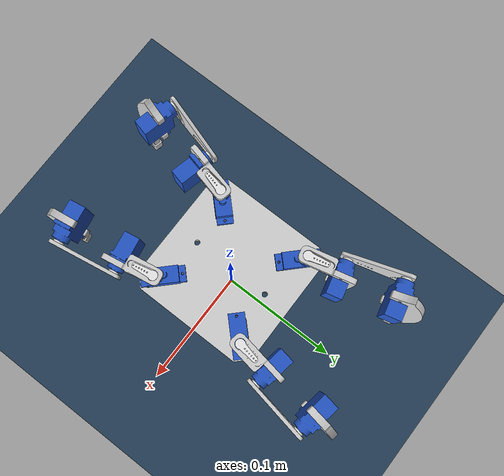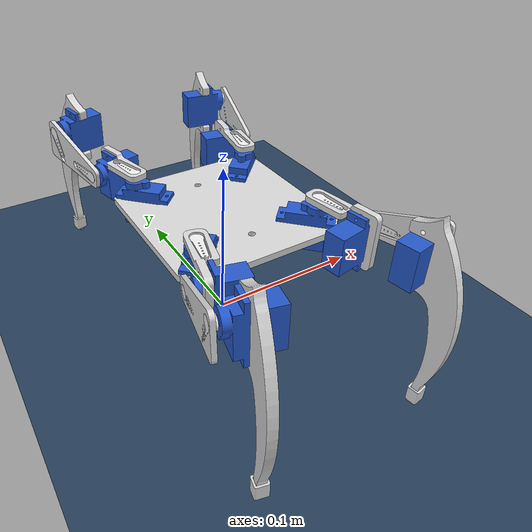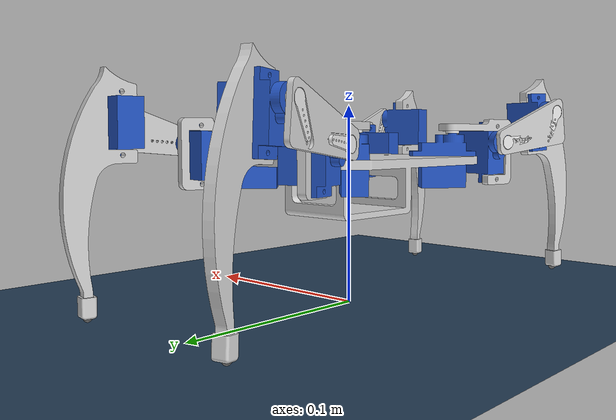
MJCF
<mujoco model="spider_quadruped_scene">
  <include file="base.xml"/>

  <statistic center="0 0 0.05" extent="0.35"/>

  <visual>
    <headlight diffuse="0.6 0.6 0.6" ambient="0.3 0.3 0.3" specular="0 0 0"/>
    <global azimuth="140" elevation="-25"/>
  </visual>

  <asset>
    <texture type="skybox" builtin="gradient" rgb1="0.3 0.5 0.7" rgb2="0 0 0" width="512" height="3072"/>
    <texture type="2d" name="groundplane" builtin="checker" mark="edge" rgb1="0.2 0.3 0.4" rgb2="0.1 0.2 0.3"
      markrgb="0.8 0.8 0.8" width="300" height="300"/>
    <material name="groundplane" texture="groundplane" texuniform="true" texrepeat="5 5" reflectance="0.2"/>
  </asset>

  <worldbody>
    <light pos="0 0 1.5" dir="0 0 -1" directional="true"/>
    <geom name="floor" size="0 0 0.05" type="plane" material="groundplane" solref="0.004 1"/>
  </worldbody>
</mujoco>

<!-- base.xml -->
<mujoco model="spider_quadruped">
  <compiler angle="radian" meshdir="../meshes/" autolimits="true"/>
  <option timestep="0.001" integrator="implicitfast"/>

  <default>
    <mesh scale="0.001 0.001 0.001"/>
    <joint damping="0.02" armature="0.0005" frictionloss="0.001" range="-1.5708 1.5708"/>
    <position kp="3" kv="0.03" forcerange="-0.2 0.2" inheritrange="1"/>
    <default class="visual">
      <geom type="mesh" contype="0" conaffinity="0" group="2" density="0" quat="0.5 0.5 0.5 0.5" material="print"/>
      <default class="servo"><geom material="servo"/></default>
      <default class="horn"><geom material="horn"/></default>
    </default>
    <default class="collision">
      <!-- collide with the floor only (self-collision is prevented by joint limits) -->
      <geom type="mesh" group="3" density="0" quat="0.5 0.5 0.5 0.5" friction="0.8 0.02 0.01" rgba="1 0.3 0.3 0.4"
        contype="0" conaffinity="1" solref="0.004 1"/>
    </default>
  </default>

  <asset>
    <material name="print" rgba="0.85 0.85 0.85 1"/>
    <material name="servo" rgba="0.15 0.35 0.8 1"/>
    <material name="horn" rgba="0.95 0.95 0.95 1"/>

    <mesh name="base" file="quadrapod reddit - base 5.0 remake-1.STL"/>
    <mesh name="servo_1" file="quadrapod reddit - Servo_motor.step-1.STL"/>
    <mesh name="servo_2" file="quadrapod reddit - Servo_motor.step-2.STL"/>
    <mesh name="servo_3" file="quadrapod reddit - Servo_motor.step-3.STL"/>
    <mesh name="servo_4" file="quadrapod reddit - Servo_motor.step-4.STL"/>
    <mesh name="servo_5" file="quadrapod reddit - Servo_motor.step-5.STL"/>
    <mesh name="servo_6" file="quadrapod reddit - Servo_motor.step-6.STL"/>
    <mesh name="servo_7" file="quadrapod reddit - Servo_motor.step-7.STL"/>
    <mesh name="servo_8" file="quadrapod reddit - Servo_motor.step-8.STL"/>
    <mesh name="servo_9" file="quadrapod reddit - Servo_motor.step-9.STL"/>
    <mesh name="servo_10" file="quadrapod reddit - Servo_motor.step-10.STL"/>
    <mesh name="servo_11" file="quadrapod reddit - Servo_motor.step-11.STL"/>
    <mesh name="servo_12" file="quadrapod reddit - Servo_motor.step-12.STL"/>
    <mesh name="horn_1" file="quadrapod reddit - servo horn-1.STL"/>
    <mesh name="horn_2" file="quadrapod reddit - servo horn-2.STL"/>
    <mesh name="horn_3" file="quadrapod reddit - servo horn-3.STL"/>
    <mesh name="horn_4" file="quadrapod reddit - servo horn-4.STL"/>
    <mesh name="horn_5" file="quadrapod reddit - servo horn-5.STL"/>
    <mesh name="horn_6" file="quadrapod reddit - servo horn-6.STL"/>
    <mesh name="horn_7" file="quadrapod reddit - servo horn-7.STL"/>
    <mesh name="horn_8" file="quadrapod reddit - servo horn-8.STL"/>
    <mesh name="horn_9" file="quadrapod reddit - servo horn-9.STL"/>
    <mesh name="horn_10" file="quadrapod reddit - servo horn-10.STL"/>
    <mesh name="horn_11" file="quadrapod reddit - servo horn-11.STL"/>
    <mesh name="horn_12" file="quadrapod reddit - servo horn-12.STL"/>
    <mesh name="FL_clamp" file="quadrapod reddit - clamp 1 redesigned-1.STL"/>
    <mesh name="FR_clamp" file="quadrapod reddit - clamp 1 redesigned-2.STL"/>
    <mesh name="RL_clamp" file="quadrapod reddit - Mirrorclamp 1 redesigned-1.STL"/>
    <mesh name="RR_clamp" file="quadrapod reddit - Mirrorclamp 1 redesigned-2.STL"/>
    <mesh name="FL_mid" file="quadrapod reddit - mid clamp redesign-1.STL"/>
    <mesh name="FR_mid" file="quadrapod reddit - mid clamp redesign-2.STL"/>
    <mesh name="RL_mid" file="quadrapod reddit - Mirrormid clamp redesign---------------------1.STL"/>
    <mesh name="RR_mid" file="quadrapod reddit - Mirrormid clamp redesign---------------------2.STL"/>
    <mesh name="FL_tibia" file="quadrapod reddit - tibia RD-1.STL"/>
    <mesh name="RL_tibia" file="quadrapod reddit - tibia RD-2.STL"/>
    <mesh name="RR_tibia" file="quadrapod reddit - tibia RD-3.STL"/>
    <mesh name="FR_tibia" file="quadrapod reddit - tibia RD-4.STL"/>
    <mesh name="FL_tip" file="quadrapod reddit - tibia tip-1.STL"/>
    <mesh name="RL_tip" file="quadrapod reddit - tibia tip-2.STL"/>
    <mesh name="RR_tip" file="quadrapod reddit - tibia tip-3.STL"/>
    <mesh name="FR_tip" file="quadrapod reddit - tibia tip-4.STL"/>
  </asset>

  <worldbody>
    <body name="base_link" pos="0 0 0.06" childclass="visual">
      <freejoint name="root"/>
      <inertial pos="0 0 0.0086" mass="0.2025" fullinertia="7.194e-05 7.012e-05 1.310e-04 0 0 0"/>
      <site name="imu" pos="0 0 0" size="0.003"/>
      <geom mesh="base" pos="-0.0675254 -0.132465 -0.054649"/>
      <geom mesh="servo_1" class="servo" pos="-0.0675254 -0.132465 -0.054649"/>
      <geom mesh="servo_4" class="servo" pos="-0.0675254 -0.132465 -0.054649"/>
      <geom mesh="servo_5" class="servo" pos="-0.0675254 -0.132465 -0.054649"/>
      <geom mesh="servo_6" class="servo" pos="-0.0675254 -0.132465 -0.054649"/>
      <geom mesh="base" class="collision" pos="-0.0675254 -0.132465 -0.054649"/>
      <geom mesh="servo_1" class="collision" pos="-0.0675254 -0.132465 -0.054649"/>
      <geom mesh="servo_4" class="collision" pos="-0.0675254 -0.132465 -0.054649"/>
      <geom mesh="servo_5" class="collision" pos="-0.0675254 -0.132465 -0.054649"/>
      <geom mesh="servo_6" class="collision" pos="-0.0675254 -0.132465 -0.054649"/>

      <!-- FRONT LEFT -->
      <body name="FL_coxa" pos="0.03752 0.037166 0.02855">
        <joint name="FL_coxa_joint" axis="0 0 1" range="-1.5708 0.5236"/>
        <inertial pos="-0.00046952 0.025303 -0.011077" mass="0.010901" fullinertia="1.3433e-06 1.1827e-06 1.1172e-06 7.7895e-08 -6.036e-08 2.6762e-07"/>
        <geom mesh="FL_clamp" pos="-0.105045 -0.169631 -0.083199"/>
        <geom mesh="horn_1" class="horn" pos="-0.105045 -0.169631 -0.083199"/>
        <geom mesh="servo_2" class="servo" pos="-0.105045 -0.169631 -0.083199"/>
        <geom mesh="FL_clamp" class="collision" pos="-0.105045 -0.169631 -0.083199"/>
        <geom mesh="servo_2" class="collision" pos="-0.105045 -0.169631 -0.083199"/>
        <body name="FL_femur" pos="0.016051 0.024277 -0.0074">
          <joint name="FL_femur_joint" axis="0.9862 -0.1656 0"/>
          <inertial pos="0.0037466 0.020988 0.0058263" mass="0.0024496" fullinertia="6.2957e-07 1.2071e-07 5.4206e-07 -8.8356e-08 -2.2326e-08 -1.359e-07"/>
          <geom mesh="FL_mid" pos="-0.121096 -0.193908 -0.075799"/>
          <geom mesh="horn_2" class="horn" pos="-0.121096 -0.193908 -0.075799"/>
          <geom mesh="horn_3" class="horn" pos="-0.121096 -0.193908 -0.075799"/>
          <geom mesh="FL_mid" class="collision" pos="-0.121096 -0.193908 -0.075799"/>
          <body name="FL_tibia" pos="0.0063376 0.037747 0.014863">
            <joint name="FL_tibia_joint" axis="0.9862 -0.1656 0" range="-0.9948 1.5708"/>
            <inertial pos="-0.015733 0.0077231 -0.013664" mass="0.014061" fullinertia="7.1221e-06 6.6603e-06 1.4786e-06 -1.1556e-07 2.9199e-07 1.6351e-06"/>
            <geom mesh="FL_tibia" pos="-0.127433 -0.231655 -0.0906616"/>
            <geom mesh="FL_tip" pos="-0.127433 -0.231655 -0.0906616"/>
            <geom mesh="servo_3" class="servo" pos="-0.127433 -0.231655 -0.0906616"/>
            <geom mesh="FL_tibia" class="collision" pos="-0.127433 -0.231655 -0.0906616"/>
            <geom mesh="servo_3" class="collision" pos="-0.127433 -0.231655 -0.0906616"/>
            <geom name="FL_foot" mesh="FL_tip" class="collision" pos="-0.127433 -0.231655 -0.0906616"/>
            <site name="FL_foot" pos="-0.01356 0.018587 -0.089869" size="0.002"/>
          </body>
        </body>
      </body>

      <!-- REAR LEFT -->
      <body name="RL_coxa" pos="-0.037166 0.03752 0.02855">
        <joint name="RL_coxa_joint" axis="0 0 1" range="-0.5760 1.5708"/>
        <inertial pos="-0.0013273 0.025273 -0.010665" mass="0.010901" fullinertia="1.3421e-06 1.161e-06 1.1172e-06 -6.574e-08 4.0386e-08 2.6305e-07"/>
        <geom mesh="RL_clamp" pos="-0.0303594 -0.169984 -0.083199"/>
        <geom mesh="horn_4" class="horn" pos="-0.0303594 -0.169984 -0.083199"/>
        <geom mesh="servo_7" class="servo" pos="-0.0303594 -0.169984 -0.083199"/>
        <geom mesh="RL_clamp" class="collision" pos="-0.0303594 -0.169984 -0.083199"/>
        <geom mesh="servo_7" class="collision" pos="-0.0303594 -0.169984 -0.083199"/>
        <body name="RL_femur" pos="-0.017733 0.023077 -0.0069">
          <joint name="RL_femur_joint" axis="-0.972 -0.2352 0"/>
          <inertial pos="-0.005173 0.020448 0.0066131" mass="0.0024496" fullinertia="6.1528e-07 1.4603e-07 5.3144e-07 1.2108e-07 3.5638e-08 -1.4931e-07"/>
          <geom mesh="RL_mid" pos="-0.0126263 -0.193062 -0.076299"/>
          <geom mesh="horn_5" class="horn" pos="-0.0126263 -0.193062 -0.076299"/>
          <geom mesh="horn_6" class="horn" pos="-0.0126263 -0.193062 -0.076299"/>
          <geom mesh="RL_mid" class="collision" pos="-0.0126263 -0.193062 -0.076299"/>
          <body name="RL_tibia" pos="-0.0088641 0.036639 0.016275">
            <joint name="RL_tibia_joint" axis="-0.972 -0.2352 0" range="-1.5708 0.9948"/>
            <inertial pos="0.014988 0.0094516 -0.013408" mass="0.014061" fullinertia="7.0932e-06 6.518e-06 1.65e-06 1.8779e-07 -4.667e-07 1.8427e-06"/>
            <geom mesh="RL_tibia" pos="-0.00376213 -0.229701 -0.0925738"/>
            <geom mesh="RL_tip" pos="-0.00376213 -0.229701 -0.0925738"/>
            <geom mesh="servo_8" class="servo" pos="-0.00376213 -0.229701 -0.0925738"/>
            <geom mesh="RL_tibia" class="collision" pos="-0.00376213 -0.229701 -0.0925738"/>
            <geom mesh="servo_8" class="collision" pos="-0.00376213 -0.229701 -0.0925738"/>
            <geom name="RL_foot" mesh="RL_tip" class="collision" pos="-0.00376213 -0.229701 -0.0925738"/>
            <site name="RL_foot" pos="0.011155 0.022571 -0.089045" size="0.002"/>
          </body>
        </body>
      </body>

      <!-- REAR RIGHT -->
      <body name="RR_coxa" pos="-0.03752 -0.037166 0.02855">
        <joint name="RR_coxa_joint" axis="0 0 1" range="-1.5708 0.5760"/>
        <inertial pos="-0.0015781 -0.02548 -0.010665" mass="0.010901" fullinertia="1.3287e-06 1.2335e-06 1.1761e-06 4.6707e-08 3.4993e-08 -2.6174e-07"/>
        <geom mesh="RR_clamp" pos="-0.0300058 -0.0952989 -0.083199"/>
        <geom mesh="horn_7" class="horn" pos="-0.0300058 -0.0952989 -0.083199"/>
        <geom mesh="servo_9" class="servo" pos="-0.0300058 -0.0952989 -0.083199"/>
        <geom mesh="RR_clamp" class="collision" pos="-0.0300058 -0.0952989 -0.083199"/>
        <geom mesh="servo_9" class="collision" pos="-0.0300058 -0.0952989 -0.083199"/>
        <body name="RR_femur" pos="-0.01738 -0.023431 -0.0069">
          <joint name="RR_femur_joint" axis="-0.972 0.2352 0"/>
          <inertial pos="-0.0052527 -0.020428 0.0066131" mass="0.0024496" fullinertia="6.1521e-07 1.461e-07 5.3144e-07 -1.2122e-07 3.5146e-08 1.4943e-07"/>
          <geom mesh="RR_mid" pos="-0.0126263 -0.0718681 -0.076299"/>
          <geom mesh="horn_8" class="horn" pos="-0.0126263 -0.0718681 -0.076299"/>
          <geom mesh="horn_9" class="horn" pos="-0.0126263 -0.0718681 -0.076299"/>
          <geom mesh="RR_mid" class="collision" pos="-0.0126263 -0.0718681 -0.076299"/>
          <body name="RR_tibia" pos="-0.0088641 -0.036639 0.016275">
            <joint name="RR_tibia_joint" axis="-0.972 0.2352 0" range="-1.0996 1.5708"/>
            <inertial pos="0.014988 -0.0094516 -0.013408" mass="0.014061" fullinertia="7.0932e-06 6.518e-06 1.65e-06 -1.8779e-07 -4.667e-07 -1.8427e-06"/>
            <geom mesh="RR_tibia" pos="-0.00376213 -0.0352287 -0.0925738"/>
            <geom mesh="RR_tip" pos="-0.00376213 -0.0352287 -0.0925738"/>
            <geom mesh="servo_10" class="servo" pos="-0.00376213 -0.0352287 -0.0925738"/>
            <geom mesh="RR_tibia" class="collision" pos="-0.00376213 -0.0352287 -0.0925738"/>
            <geom mesh="servo_10" class="collision" pos="-0.00376213 -0.0352287 -0.0925738"/>
            <geom name="RR_foot" mesh="RR_tip" class="collision" pos="-0.00376213 -0.0352287 -0.0925738"/>
            <site name="RR_foot" pos="0.011155 -0.022571 -0.089045" size="0.002"/>
          </body>
        </body>
      </body>

      <!-- FRONT RIGHT -->
      <body name="FR_coxa" pos="0.037166 -0.03752 0.02855">
        <joint name="FR_coxa_joint" axis="0 0 1" range="-0.5236 1.5708"/>
        <inertial pos="0.00049728 -0.024847 -0.011077" mass="0.010901" fullinertia="1.333e-06 1.252e-06 1.1761e-06 -5.2976e-08 -5.7648e-08 -2.6716e-07"/>
        <geom mesh="FR_clamp" pos="-0.104691 -0.0949453 -0.083199"/>
        <geom mesh="horn_10" class="horn" pos="-0.104691 -0.0949453 -0.083199"/>
        <geom mesh="servo_11" class="servo" pos="-0.104691 -0.0949453 -0.083199"/>
        <geom mesh="FR_clamp" class="collision" pos="-0.104691 -0.0949453 -0.083199"/>
        <geom mesh="servo_11" class="collision" pos="-0.104691 -0.0949453 -0.083199"/>
        <body name="FR_femur" pos="0.016404 -0.023924 -0.0074">
          <joint name="FR_femur_joint" axis="0.9862 0.1656 0"/>
          <inertial pos="0.0038275 -0.020974 0.0058263" mass="0.0024496" fullinertia="6.2952e-07 1.2075e-07 5.4205e-07 8.8493e-08 -2.1821e-08 1.3599e-07"/>
          <geom mesh="FR_mid" pos="-0.121096 -0.0710214 -0.075799"/>
          <geom mesh="horn_11" class="horn" pos="-0.121096 -0.0710214 -0.075799"/>
          <geom mesh="horn_12" class="horn" pos="-0.121096 -0.0710214 -0.075799"/>
          <geom mesh="FR_mid" class="collision" pos="-0.121096 -0.0710214 -0.075799"/>
          <body name="FR_tibia" pos="0.0063376 -0.037747 0.014863">
            <joint name="FR_tibia_joint" axis="0.9862 0.1656 0" range="-1.5708 0.9948"/>
            <inertial pos="-0.015733 -0.0077231 -0.013664" mass="0.014061" fullinertia="7.1221e-06 6.6603e-06 1.4786e-06 1.1556e-07 2.9199e-07 -1.6351e-06"/>
            <geom mesh="FR_tibia" pos="-0.127433 -0.0332746 -0.0906616"/>
            <geom mesh="FR_tip" pos="-0.127433 -0.0332746 -0.0906616"/>
            <geom mesh="servo_12" class="servo" pos="-0.127433 -0.0332746 -0.0906616"/>
            <geom mesh="FR_tibia" class="collision" pos="-0.127433 -0.0332746 -0.0906616"/>
            <geom mesh="servo_12" class="collision" pos="-0.127433 -0.0332746 -0.0906616"/>
            <geom name="FR_foot" mesh="FR_tip" class="collision" pos="-0.127433 -0.0332746 -0.0906616"/>
            <site name="FR_foot" pos="-0.01356 -0.018587 -0.089869" size="0.002"/>
          </body>
        </body>
      </body>
    </body>
  </worldbody>

  <actuator>
    <position name="FL_coxa" joint="FL_coxa_joint"/>
    <position name="FL_femur" joint="FL_femur_joint"/>
    <position name="FL_tibia" joint="FL_tibia_joint"/>
    <position name="RL_coxa" joint="RL_coxa_joint"/>
    <position name="RL_femur" joint="RL_femur_joint"/>
    <position name="RL_tibia" joint="RL_tibia_joint"/>
    <position name="RR_coxa" joint="RR_coxa_joint"/>
    <position name="RR_femur" joint="RR_femur_joint"/>
    <position name="RR_tibia" joint="RR_tibia_joint"/>
    <position name="FR_coxa" joint="FR_coxa_joint"/>
    <position name="FR_femur" joint="FR_femur_joint"/>
    <position name="FR_tibia" joint="FR_tibia_joint"/>
  </actuator>

  <sensor>
    <framequat name="imu_quat" objtype="site" objname="imu"/>
    <gyro name="imu_gyro" site="imu"/>
    <accelerometer name="imu_acc" site="imu"/>
  </sensor>

  <keyframe>
    <key name="home" qpos="0 0 0.06 1 0 0 0  0 0 0  0 0 0  0 0 0  0 0 0" ctrl="0 0 0  0 0 0  0 0 0  0 0 0"/>
  </keyframe>
</mujoco>
